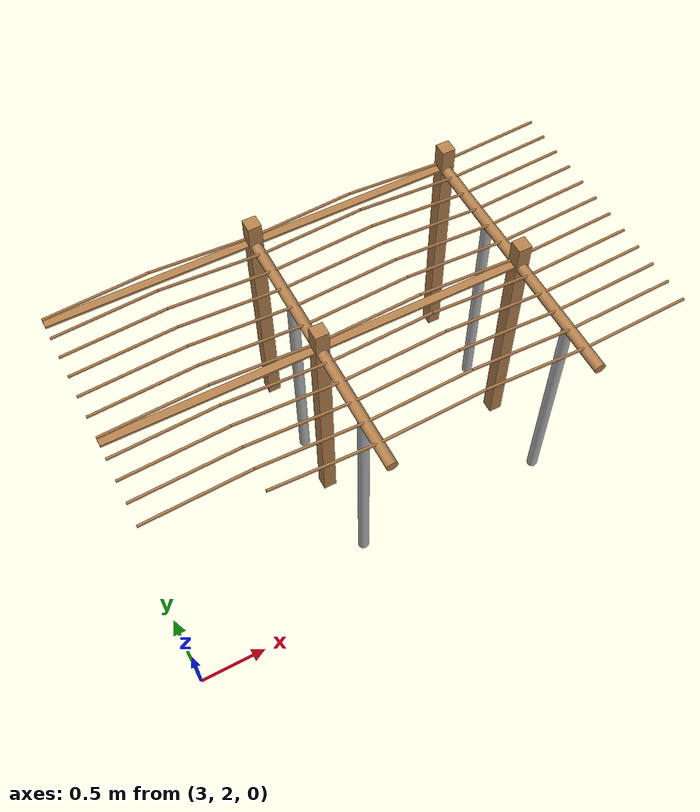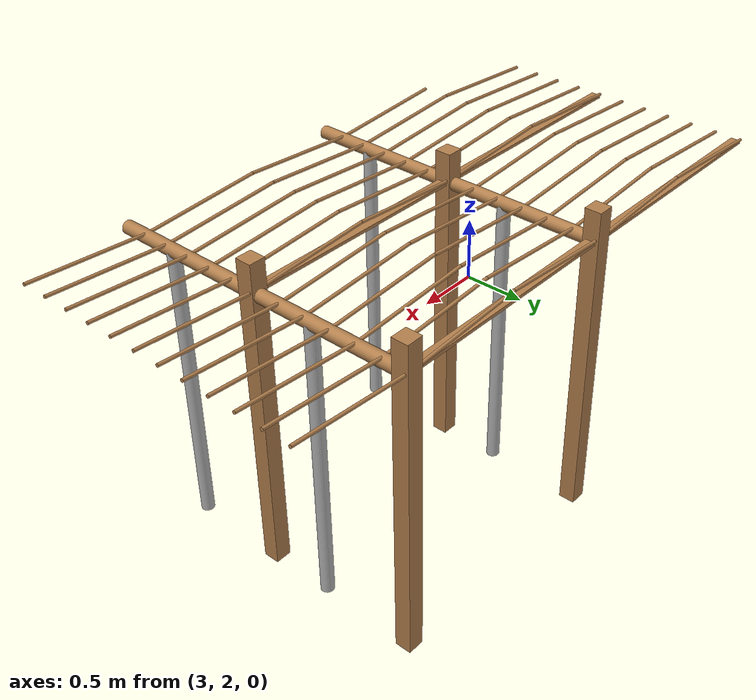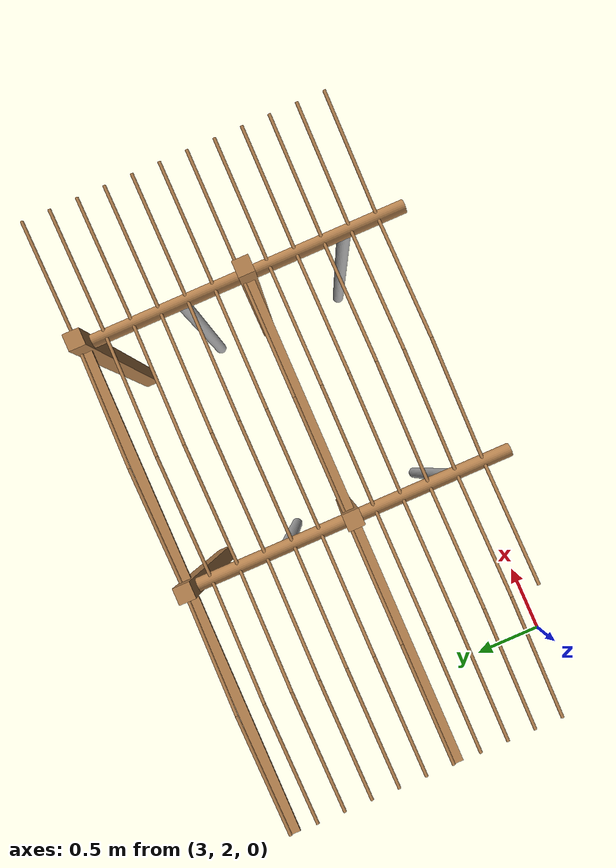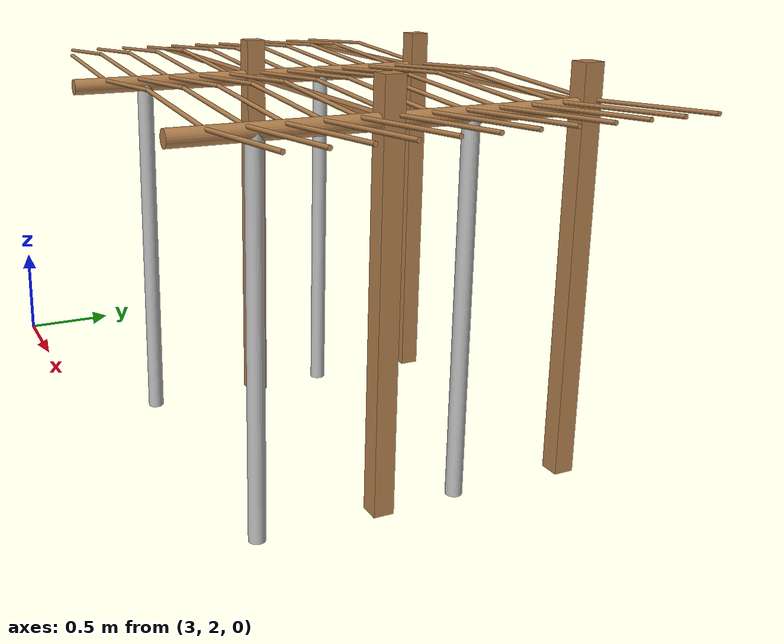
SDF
<sdf version="1.4">
 <model name="pergola">
  <include><name>post_36</name><pose>4.5 3.0 0 0 0 0</pose><uri>model://post</uri></include>
  <include><name>post_37</name><pose>4.5 4.0 0 0 0 0</pose><uri>model://post</uri></include>
  <include><name>post_47</name><pose>6.0 3.0 0 0 0 0</pose><uri>model://post</uri></include>
  <include><name>post_48</name><pose>6.0 4.0 0 0 0 0</pose><uri>model://post</uri></include>
  <link name="beam_25">
   <pose>3.75 3.0 1.81 0 0 0</pose>
   <collision name="collision"><geometry><box><size>1.5 0.06 0.02</size></box></geometry></collision>
   <visual name="visual">
    <geometry><box><size>1.5 0.06 0.02</size></box></geometry>
    <material><script><name>Gazebo/Wood</name></script></material>
   </visual>
   <inertial>
    <mass>5</mass>
    <inertia>
     <ixx>0.0016666666666666668</ixx>
     <ixy>0.0</ixy>
     <ixz>0.0</ixz>
     <iyy>0.9390000000000001</iyy>
     <iyz>0.0</iyz>
     <izz>0.9376666666666665</izz>
    </inertia>
   </inertial>
  </link>
  <link name="beam_26">
   <pose>3.75 4.0 1.81 0 0 0</pose>
   <collision name="collision"><geometry><box><size>1.5 0.06 0.02</size></box></geometry></collision>
   <visual name="visual">
    <geometry><box><size>1.5 0.06 0.02</size></box></geometry>
    <material><script><name>Gazebo/Wood</name></script></material>
   </visual>
   <inertial>
    <mass>5</mass>
    <inertia>
     <ixx>0.0016666666666666668</ixx>
     <ixy>0.0</ixy>
     <ixz>0.0</ixz>
     <iyy>0.9390000000000001</iyy>
     <iyz>0.0</iyz>
     <izz>0.9376666666666665</izz>
    </inertia>
   </inertial>
  </link>
  <link name="beam_36">
   <pose>5.25 3.0 1.81 0 0 0</pose>
   <collision name="collision"><geometry><box><size>1.5 0.06 0.02</size></box></geometry></collision>
   <visual name="visual">
    <geometry><box><size>1.5 0.06 0.02</size></box></geometry>
    <material><script><name>Gazebo/Wood</name></script></material>
   </visual>
   <inertial>
    <mass>5</mass>
    <inertia>
     <ixx>0.0016666666666666668</ixx>
     <ixy>0.0</ixy>
     <ixz>0.0</ixz>
     <iyy>0.9390000000000001</iyy>
     <iyz>0.0</iyz>
     <izz>0.9376666666666665</izz>
    </inertia>
   </inertial>
  </link>
  <link name="beam_37">
   <pose>5.25 4.0 1.81 0 0 0</pose>
   <collision name="collision"><geometry><box><size>1.5 0.06 0.02</size></box></geometry></collision>
   <visual name="visual">
    <geometry><box><size>1.5 0.06 0.02</size></box></geometry>
    <material><script><name>Gazebo/Wood</name></script></material>
   </visual>
   <inertial>
    <mass>5</mass>
    <inertia>
     <ixx>0.0016666666666666668</ixx>
     <ixy>0.0</ixy>
     <ixz>0.0</ixz>
     <iyy>0.9390000000000001</iyy>
     <iyz>0.0</iyz>
     <izz>0.9376666666666665</izz>
    </inertia>
   </inertial>
  </link>
  <include><name>tree_32</name><pose>4.5 2.4 0 0 0 0</pose><uri>model://tree_trunk</uri></include>
  <include><name>tree_33</name><pose>4.5 3.4 0 0 0 0</pose><uri>model://tree_trunk</uri></include>
  <include><name>tree_42</name><pose>6.0 2.4 0 0 0 0</pose><uri>model://tree_trunk</uri></include>
  <include><name>tree_43</name><pose>6.0 3.4 0 0 0 0</pose><uri>model://tree_trunk</uri></include>
  <link name="baseBranch_32">
   <pose>4.5 2.5 1.8 1.5707963267948966 0 0</pose>
   <collision name="collision">
    <geometry><cylinder><radius>0.04</radius><length>0.94</length></cylinder></geometry>
   </collision>
   <visual name="visual">
    <geometry><cylinder><radius>0.04</radius><length>0.94</length></cylinder></geometry>
    <material><script><name>Gazebo/WoodFloor</name></script></material>
   </visual>
   <inertial>
    <mass>10</mass>
    <inertia>
     <ixx>0.7403333333333334</ixx>
     <ixy>0.0</ixy>
     <ixz>0.0</ixz>
     <iyy>0.7403333333333334</iyy>
     <iyz>0.0</iyz>
     <izz>0.008</izz>
    </inertia>
   </inertial>
  </link>
  <link name="baseBranch_33">
   <pose>4.5 3.5 1.8 1.5707963267948966 0 0</pose>
   <collision name="collision">
    <geometry><cylinder><radius>0.04</radius><length>0.94</length></cylinder></geometry>
   </collision>
   <visual name="visual">
    <geometry><cylinder><radius>0.04</radius><length>0.94</length></cylinder></geometry>
    <material><script><name>Gazebo/WoodFloor</name></script></material>
   </visual>
   <inertial>
    <mass>10</mass>
    <inertia>
     <ixx>0.7403333333333334</ixx>
     <ixy>0.0</ixy>
     <ixz>0.0</ixz>
     <iyy>0.7403333333333334</iyy>
     <iyz>0.0</iyz>
     <izz>0.008</izz>
    </inertia>
   </inertial>
  </link>
  <link name="baseBranch_42">
   <pose>6.0 2.5 1.8 1.5707963267948966 0 0</pose>
   <collision name="collision">
    <geometry><cylinder><radius>0.04</radius><length>0.94</length></cylinder></geometry>
   </collision>
   <visual name="visual">
    <geometry><cylinder><radius>0.04</radius><length>0.94</length></cylinder></geometry>
    <material><script><name>Gazebo/WoodFloor</name></script></material>
   </visual>
   <inertial>
    <mass>10</mass>
    <inertia>
     <ixx>0.7403333333333334</ixx>
     <ixy>0.0</ixy>
     <ixz>0.0</ixz>
     <iyy>0.7403333333333334</iyy>
     <iyz>0.0</iyz>
     <izz>0.008</izz>
    </inertia>
   </inertial>
  </link>
  <link name="baseBranch_43">
   <pose>6.0 3.5 1.8 1.5707963267948966 0 0</pose>
   <collision name="collision">
    <geometry><cylinder><radius>0.04</radius><length>0.94</length></cylinder></geometry>
   </collision>
   <visual name="visual">
    <geometry><cylinder><radius>0.04</radius><length>0.94</length></cylinder></geometry>
    <material><script><name>Gazebo/WoodFloor</name></script></material>
   </visual>
   <inertial>
    <mass>10</mass>
    <inertia>
     <ixx>0.7403333333333334</ixx>
     <ixy>0.0</ixy>
     <ixz>0.0</ixz>
     <iyy>0.7403333333333334</iyy>
     <iyz>0.0</iyz>
     <izz>0.008</izz>
    </inertia>
   </inertial>
  </link>
  <link name="vine_267">
   <pose>4.125 2.1966666666666663 1.85 0 -1.5042281630190728 0</pose>
   <collision name="collision">
    <geometry><cylinder><radius>0.01</radius><length>0.7516648189186453</length></cylinder></geometry>
   </collision>
   <visual name="visual">
    <geometry><cylinder><radius>0.01</radius><length>0.7516648189186453</length></cylinder></geometry>
    <material><script><name>Gazebo/WoodFloor</name></script></material>
   </visual>
   <inertial>
    <mass>5</mass>
    <inertia>
     <ixx>0.23554166666666657</ixx>
     <ixy>0.0</ixy>
     <ixz>0.0</ixz>
     <iyy>0.23554166666666657</iyy>
     <iyz>0.0</iyz>
     <izz>0.00025</izz>
    </inertia>
   </inertial>
  </link>
  <link name="vine_268">
   <pose>3.375 2.363333333333333 1.85 0 1.5042281630190728 0</pose>
   <collision name="collision">
    <geometry><cylinder><radius>0.01</radius><length>0.7516648189186453</length></cylinder></geometry>
   </collision>
   <visual name="visual">
    <geometry><cylinder><radius>0.01</radius><length>0.7516648189186453</length></cylinder></geometry>
    <material><script><name>Gazebo/WoodFloor</name></script></material>
   </visual>
   <inertial>
    <mass>5</mass>
    <inertia>
     <ixx>0.23554166666666657</ixx>
     <ixy>0.0</ixy>
     <ixz>0.0</ixz>
     <iyy>0.23554166666666657</iyy>
     <iyz>0.0</iyz>
     <izz>0.00025</izz>
    </inertia>
   </inertial>
  </link>
  <link name="vine_269">
   <pose>4.125 2.363333333333333 1.85 0 -1.5042281630190728 0</pose>
   <collision name="collision">
    <geometry><cylinder><radius>0.01</radius><length>0.7516648189186453</length></cylinder></geometry>
   </collision>
   <visual name="visual">
    <geometry><cylinder><radius>0.01</radius><length>0.7516648189186453</length></cylinder></geometry>
    <material><script><name>Gazebo/WoodFloor</name></script></material>
   </visual>
   <inertial>
    <mass>5</mass>
    <inertia>
     <ixx>0.23554166666666657</ixx>
     <ixy>0.0</ixy>
     <ixz>0.0</ixz>
     <iyy>0.23554166666666657</iyy>
     <iyz>0.0</iyz>
     <izz>0.00025</izz>
    </inertia>
   </inertial>
  </link>
  <link name="vine_270">
   <pose>3.375 2.53 1.85 0 1.5042281630190728 0</pose>
   <collision name="collision">
    <geometry><cylinder><radius>0.01</radius><length>0.7516648189186453</length></cylinder></geometry>
   </collision>
   <visual name="visual">
    <geometry><cylinder><radius>0.01</radius><length>0.7516648189186453</length></cylinder></geometry>
    <material><script><name>Gazebo/WoodFloor</name></script></material>
   </visual>
   <inertial>
    <mass>5</mass>
    <inertia>
     <ixx>0.23554166666666657</ixx>
     <ixy>0.0</ixy>
     <ixz>0.0</ixz>
     <iyy>0.23554166666666657</iyy>
     <iyz>0.0</iyz>
     <izz>0.00025</izz>
    </inertia>
   </inertial>
  </link>
  <link name="vine_271">
   <pose>4.125 2.53 1.85 0 -1.5042281630190728 0</pose>
   <collision name="collision">
    <geometry><cylinder><radius>0.01</radius><length>0.7516648189186453</length></cylinder></geometry>
   </collision>
   <visual name="visual">
    <geometry><cylinder><radius>0.01</radius><length>0.7516648189186453</length></cylinder></geometry>
    <material><script><name>Gazebo/WoodFloor</name></script></material>
   </visual>
   <inertial>
    <mass>5</mass>
    <inertia>
     <ixx>0.23554166666666657</ixx>
     <ixy>0.0</ixy>
     <ixz>0.0</ixz>
     <iyy>0.23554166666666657</iyy>
     <iyz>0.0</iyz>
     <izz>0.00025</izz>
    </inertia>
   </inertial>
  </link>
  <link name="vine_272">
   <pose>3.375 2.6966666666666663 1.85 0 1.5042281630190728 0</pose>
   <collision name="collision">
    <geometry><cylinder><radius>0.01</radius><length>0.7516648189186453</length></cylinder></geometry>
   </collision>
   <visual name="visual">
    <geometry><cylinder><radius>0.01</radius><length>0.7516648189186453</length></cylinder></geometry>
    <material><script><name>Gazebo/WoodFloor</name></script></material>
   </visual>
   <inertial>
    <mass>5</mass>
    <inertia>
     <ixx>0.23554166666666657</ixx>
     <ixy>0.0</ixy>
     <ixz>0.0</ixz>
     <iyy>0.23554166666666657</iyy>
     <iyz>0.0</iyz>
     <izz>0.00025</izz>
    </inertia>
   </inertial>
  </link>
  <link name="vine_273">
   <pose>4.125 2.6966666666666663 1.85 0 -1.5042281630190728 0</pose>
   <collision name="collision">
    <geometry><cylinder><radius>0.01</radius><length>0.7516648189186453</length></cylinder></geometry>
   </collision>
   <visual name="visual">
    <geometry><cylinder><radius>0.01</radius><length>0.7516648189186453</length></cylinder></geometry>
    <material><script><name>Gazebo/WoodFloor</name></script></material>
   </visual>
   <inertial>
    <mass>5</mass>
    <inertia>
     <ixx>0.23554166666666657</ixx>
     <ixy>0.0</ixy>
     <ixz>0.0</ixz>
     <iyy>0.23554166666666657</iyy>
     <iyz>0.0</iyz>
     <izz>0.00025</izz>
    </inertia>
   </inertial>
  </link>
  <link name="vine_274">
   <pose>3.375 2.863333333333333 1.85 0 1.5042281630190728 0</pose>
   <collision name="collision">
    <geometry><cylinder><radius>0.01</radius><length>0.7516648189186453</length></cylinder></geometry>
   </collision>
   <visual name="visual">
    <geometry><cylinder><radius>0.01</radius><length>0.7516648189186453</length></cylinder></geometry>
    <material><script><name>Gazebo/WoodFloor</name></script></material>
   </visual>
   <inertial>
    <mass>5</mass>
    <inertia>
     <ixx>0.23554166666666657</ixx>
     <ixy>0.0</ixy>
     <ixz>0.0</ixz>
     <iyy>0.23554166666666657</iyy>
     <iyz>0.0</iyz>
     <izz>0.00025</izz>
    </inertia>
   </inertial>
  </link>
  <link name="vine_275">
   <pose>4.125 2.863333333333333 1.85 0 -1.5042281630190728 0</pose>
   <collision name="collision">
    <geometry><cylinder><radius>0.01</radius><length>0.7516648189186453</length></cylinder></geometry>
   </collision>
   <visual name="visual">
    <geometry><cylinder><radius>0.01</radius><length>0.7516648189186453</length></cylinder></geometry>
    <material><script><name>Gazebo/WoodFloor</name></script></material>
   </visual>
   <inertial>
    <mass>5</mass>
    <inertia>
     <ixx>0.23554166666666657</ixx>
     <ixy>0.0</ixy>
     <ixz>0.0</ixz>
     <iyy>0.23554166666666657</iyy>
     <iyz>0.0</iyz>
     <izz>0.00025</izz>
    </inertia>
   </inertial>
  </link>
  <link name="vine_276">
   <pose>3.375 3.03 1.85 0 1.5042281630190728 0</pose>
   <collision name="collision">
    <geometry><cylinder><radius>0.01</radius><length>0.7516648189186453</length></cylinder></geometry>
   </collision>
   <visual name="visual">
    <geometry><cylinder><radius>0.01</radius><length>0.7516648189186453</length></cylinder></geometry>
    <material><script><name>Gazebo/WoodFloor</name></script></material>
   </visual>
   <inertial>
    <mass>5</mass>
    <inertia>
     <ixx>0.23554166666666657</ixx>
     <ixy>0.0</ixy>
     <ixz>0.0</ixz>
     <iyy>0.23554166666666657</iyy>
     <iyz>0.0</iyz>
     <izz>0.00025</izz>
    </inertia>
   </inertial>
  </link>
  <link name="vine_277">
   <pose>4.125 3.03 1.85 0 -1.5042281630190728 0</pose>
   <collision name="collision">
    <geometry><cylinder><radius>0.01</radius><length>0.7516648189186453</length></cylinder></geometry>
   </collision>
   <visual name="visual">
    <geometry><cylinder><radius>0.01</radius><length>0.7516648189186453</length></cylinder></geometry>
    <material><script><name>Gazebo/WoodFloor</name></script></material>
   </visual>
   <inertial>
    <mass>5</mass>
    <inertia>
     <ixx>0.23554166666666657</ixx>
     <ixy>0.0</ixy>
     <ixz>0.0</ixz>
     <iyy>0.23554166666666657</iyy>
     <iyz>0.0</iyz>
     <izz>0.00025</izz>
    </inertia>
   </inertial>
  </link>
  <link name="vine_278">
   <pose>3.375 3.1966666666666663 1.85 0 1.5042281630190728 0</pose>
   <collision name="collision">
    <geometry><cylinder><radius>0.01</radius><length>0.7516648189186453</length></cylinder></geometry>
   </collision>
   <visual name="visual">
    <geometry><cylinder><radius>0.01</radius><length>0.7516648189186453</length></cylinder></geometry>
    <material><script><name>Gazebo/WoodFloor</name></script></material>
   </visual>
   <inertial>
    <mass>5</mass>
    <inertia>
     <ixx>0.23554166666666657</ixx>
     <ixy>0.0</ixy>
     <ixz>0.0</ixz>
     <iyy>0.23554166666666657</iyy>
     <iyz>0.0</iyz>
     <izz>0.00025</izz>
    </inertia>
   </inertial>
  </link>
  <link name="vine_279">
   <pose>4.125 3.1966666666666663 1.85 0 -1.5042281630190728 0</pose>
   <collision name="collision">
    <geometry><cylinder><radius>0.01</radius><length>0.7516648189186453</length></cylinder></geometry>
   </collision>
   <visual name="visual">
    <geometry><cylinder><radius>0.01</radius><length>0.7516648189186453</length></cylinder></geometry>
    <material><script><name>Gazebo/WoodFloor</name></script></material>
   </visual>
   <inertial>
    <mass>5</mass>
    <inertia>
     <ixx>0.23554166666666657</ixx>
     <ixy>0.0</ixy>
     <ixz>0.0</ixz>
     <iyy>0.23554166666666657</iyy>
     <iyz>0.0</iyz>
     <izz>0.00025</izz>
    </inertia>
   </inertial>
  </link>
  <link name="vine_280">
   <pose>3.375 3.363333333333333 1.85 0 1.5042281630190728 0</pose>
   <collision name="collision">
    <geometry><cylinder><radius>0.01</radius><length>0.7516648189186453</length></cylinder></geometry>
   </collision>
   <visual name="visual">
    <geometry><cylinder><radius>0.01</radius><length>0.7516648189186453</length></cylinder></geometry>
    <material><script><name>Gazebo/WoodFloor</name></script></material>
   </visual>
   <inertial>
    <mass>5</mass>
    <inertia>
     <ixx>0.23554166666666657</ixx>
     <ixy>0.0</ixy>
     <ixz>0.0</ixz>
     <iyy>0.23554166666666657</iyy>
     <iyz>0.0</iyz>
     <izz>0.00025</izz>
    </inertia>
   </inertial>
  </link>
  <link name="vine_281">
   <pose>4.125 3.363333333333333 1.85 0 -1.5042281630190728 0</pose>
   <collision name="collision">
    <geometry><cylinder><radius>0.01</radius><length>0.7516648189186453</length></cylinder></geometry>
   </collision>
   <visual name="visual">
    <geometry><cylinder><radius>0.01</radius><length>0.7516648189186453</length></cylinder></geometry>
    <material><script><name>Gazebo/WoodFloor</name></script></material>
   </visual>
   <inertial>
    <mass>5</mass>
    <inertia>
     <ixx>0.23554166666666657</ixx>
     <ixy>0.0</ixy>
     <ixz>0.0</ixz>
     <iyy>0.23554166666666657</iyy>
     <iyz>0.0</iyz>
     <izz>0.00025</izz>
    </inertia>
   </inertial>
  </link>
  <link name="vine_282">
   <pose>3.375 3.53 1.85 0 1.5042281630190728 0</pose>
   <collision name="collision">
    <geometry><cylinder><radius>0.01</radius><length>0.7516648189186453</length></cylinder></geometry>
   </collision>
   <visual name="visual">
    <geometry><cylinder><radius>0.01</radius><length>0.7516648189186453</length></cylinder></geometry>
    <material><script><name>Gazebo/WoodFloor</name></script></material>
   </visual>
   <inertial>
    <mass>5</mass>
    <inertia>
     <ixx>0.23554166666666657</ixx>
     <ixy>0.0</ixy>
     <ixz>0.0</ixz>
     <iyy>0.23554166666666657</iyy>
     <iyz>0.0</iyz>
     <izz>0.00025</izz>
    </inertia>
   </inertial>
  </link>
  <link name="vine_283">
   <pose>4.125 3.53 1.85 0 -1.5042281630190728 0</pose>
   <collision name="collision">
    <geometry><cylinder><radius>0.01</radius><length>0.7516648189186453</length></cylinder></geometry>
   </collision>
   <visual name="visual">
    <geometry><cylinder><radius>0.01</radius><length>0.7516648189186453</length></cylinder></geometry>
    <material><script><name>Gazebo/WoodFloor</name></script></material>
   </visual>
   <inertial>
    <mass>5</mass>
    <inertia>
     <ixx>0.23554166666666657</ixx>
     <ixy>0.0</ixy>
     <ixz>0.0</ixz>
     <iyy>0.23554166666666657</iyy>
     <iyz>0.0</iyz>
     <izz>0.00025</izz>
    </inertia>
   </inertial>
  </link>
  <link name="vine_284">
   <pose>3.375 3.6966666666666663 1.85 0 1.5042281630190728 0</pose>
   <collision name="collision">
    <geometry><cylinder><radius>0.01</radius><length>0.7516648189186453</length></cylinder></geometry>
   </collision>
   <visual name="visual">
    <geometry><cylinder><radius>0.01</radius><length>0.7516648189186453</length></cylinder></geometry>
    <material><script><name>Gazebo/WoodFloor</name></script></material>
   </visual>
   <inertial>
    <mass>5</mass>
    <inertia>
     <ixx>0.23554166666666657</ixx>
     <ixy>0.0</ixy>
     <ixz>0.0</ixz>
     <iyy>0.23554166666666657</iyy>
     <iyz>0.0</iyz>
     <izz>0.00025</izz>
    </inertia>
   </inertial>
  </link>
  <link name="vine_285">
   <pose>4.125 3.6966666666666663 1.85 0 -1.5042281630190728 0</pose>
   <collision name="collision">
    <geometry><cylinder><radius>0.01</radius><length>0.7516648189186453</length></cylinder></geometry>
   </collision>
   <visual name="visual">
    <geometry><cylinder><radius>0.01</radius><length>0.7516648189186453</length></cylinder></geometry>
    <material><script><name>Gazebo/WoodFloor</name></script></material>
   </visual>
   <inertial>
    <mass>5</mass>
    <inertia>
     <ixx>0.23554166666666657</ixx>
     <ixy>0.0</ixy>
     <ixz>0.0</ixz>
     <iyy>0.23554166666666657</iyy>
     <iyz>0.0</iyz>
     <izz>0.00025</izz>
    </inertia>
   </inertial>
  </link>
  <link name="vine_286">
   <pose>3.375 3.863333333333333 1.85 0 1.5042281630190728 0</pose>
   <collision name="collision">
    <geometry><cylinder><radius>0.01</radius><length>0.7516648189186453</length></cylinder></geometry>
   </collision>
   <visual name="visual">
    <geometry><cylinder><radius>0.01</radius><length>0.7516648189186453</length></cylinder></geometry>
    <material><script><name>Gazebo/WoodFloor</name></script></material>
   </visual>
   <inertial>
    <mass>5</mass>
    <inertia>
     <ixx>0.23554166666666657</ixx>
     <ixy>0.0</ixy>
     <ixz>0.0</ixz>
     <iyy>0.23554166666666657</iyy>
     <iyz>0.0</iyz>
     <izz>0.00025</izz>
    </inertia>
   </inertial>
  </link>
  <link name="vine_287">
   <pose>4.125 3.863333333333333 1.85 0 -1.5042281630190728 0</pose>
   <collision name="collision">
    <geometry><cylinder><radius>0.01</radius><length>0.7516648189186453</length></cylinder></geometry>
   </collision>
   <visual name="visual">
    <geometry><cylinder><radius>0.01</radius><length>0.7516648189186453</length></cylinder></geometry>
    <material><script><name>Gazebo/WoodFloor</name></script></material>
   </visual>
   <inertial>
    <mass>5</mass>
    <inertia>
     <ixx>0.23554166666666657</ixx>
     <ixy>0.0</ixy>
     <ixz>0.0</ixz>
     <iyy>0.23554166666666657</iyy>
     <iyz>0.0</iyz>
     <izz>0.00025</izz>
    </inertia>
   </inertial>
  </link>
  <link name="vine_288">
   <pose>3.375 4.03 1.85 0 1.5042281630190728 0</pose>
   <collision name="collision">
    <geometry><cylinder><radius>0.01</radius><length>0.7516648189186453</length></cylinder></geometry>
   </collision>
   <visual name="visual">
    <geometry><cylinder><radius>0.01</radius><length>0.7516648189186453</length></cylinder></geometry>
    <material><script><name>Gazebo/WoodFloor</name></script></material>
   </visual>
   <inertial>
    <mass>5</mass>
    <inertia>
     <ixx>0.23554166666666657</ixx>
     <ixy>0.0</ixy>
     <ixz>0.0</ixz>
     <iyy>0.23554166666666657</iyy>
     <iyz>0.0</iyz>
     <izz>0.00025</izz>
    </inertia>
   </inertial>
  </link>
  <link name="vine_289">
   <pose>4.125 4.03 1.85 0 -1.5042281630190728 0</pose>
   <collision name="collision">
    <geometry><cylinder><radius>0.01</radius><length>0.7516648189186453</length></cylinder></geometry>
   </collision>
   <visual name="visual">
    <geometry><cylinder><radius>0.01</radius><length>0.7516648189186453</length></cylinder></geometry>
    <material><script><name>Gazebo/WoodFloor</name></script></material>
   </visual>
   <inertial>
    <mass>5</mass>
    <inertia>
     <ixx>0.23554166666666657</ixx>
     <ixy>0.0</ixy>
     <ixz>0.0</ixz>
     <iyy>0.23554166666666657</iyy>
     <iyz>0.0</iyz>
     <izz>0.00025</izz>
    </inertia>
   </inertial>
  </link>
  <link name="vine_386">
   <pose>4.875 2.1966666666666663 1.85 0 1.5042281630190728 0</pose>
   <collision name="collision">
    <geometry><cylinder><radius>0.01</radius><length>0.7516648189186453</length></cylinder></geometry>
   </collision>
   <visual name="visual">
    <geometry><cylinder><radius>0.01</radius><length>0.7516648189186453</length></cylinder></geometry>
    <material><script><name>Gazebo/WoodFloor</name></script></material>
   </visual>
   <inertial>
    <mass>5</mass>
    <inertia>
     <ixx>0.23554166666666657</ixx>
     <ixy>0.0</ixy>
     <ixz>0.0</ixz>
     <iyy>0.23554166666666657</iyy>
     <iyz>0.0</iyz>
     <izz>0.00025</izz>
    </inertia>
   </inertial>
  </link>
  <link name="vine_387">
   <pose>5.625 2.1966666666666663 1.85 0 -1.5042281630190728 0</pose>
   <collision name="collision">
    <geometry><cylinder><radius>0.01</radius><length>0.7516648189186453</length></cylinder></geometry>
   </collision>
   <visual name="visual">
    <geometry><cylinder><radius>0.01</radius><length>0.7516648189186453</length></cylinder></geometry>
    <material><script><name>Gazebo/WoodFloor</name></script></material>
   </visual>
   <inertial>
    <mass>5</mass>
    <inertia>
     <ixx>0.23554166666666657</ixx>
     <ixy>0.0</ixy>
     <ixz>0.0</ixz>
     <iyy>0.23554166666666657</iyy>
     <iyz>0.0</iyz>
     <izz>0.00025</izz>
    </inertia>
   </inertial>
  </link>
  <link name="vine_388">
   <pose>4.875 2.363333333333333 1.85 0 1.5042281630190728 0</pose>
   <collision name="collision">
    <geometry><cylinder><radius>0.01</radius><length>0.7516648189186453</length></cylinder></geometry>
   </collision>
   <visual name="visual">
    <geometry><cylinder><radius>0.01</radius><length>0.7516648189186453</length></cylinder></geometry>
    <material><script><name>Gazebo/WoodFloor</name></script></material>
   </visual>
   <inertial>
    <mass>5</mass>
    <inertia>
     <ixx>0.23554166666666657</ixx>
     <ixy>0.0</ixy>
     <ixz>0.0</ixz>
     <iyy>0.23554166666666657</iyy>
     <iyz>0.0</iyz>
     <izz>0.00025</izz>
    </inertia>
   </inertial>
  </link>
  <link name="vine_389">
   <pose>5.625 2.363333333333333 1.85 0 -1.5042281630190728 0</pose>
   <collision name="collision">
    <geometry><cylinder><radius>0.01</radius><length>0.7516648189186453</length></cylinder></geometry>
   </collision>
   <visual name="visual">
    <geometry><cylinder><radius>0.01</radius><length>0.7516648189186453</length></cylinder></geometry>
    <material><script><name>Gazebo/WoodFloor</name></script></material>
   </visual>
   <inertial>
    <mass>5</mass>
    <inertia>
     <ixx>0.23554166666666657</ixx>
     <ixy>0.0</ixy>
     <ixz>0.0</ixz>
     <iyy>0.23554166666666657</iyy>
     <iyz>0.0</iyz>
     <izz>0.00025</izz>
    </inertia>
   </inertial>
  </link>
  <link name="vine_390">
   <pose>4.875 2.53 1.85 0 1.5042281630190728 0</pose>
   <collision name="collision">
    <geometry><cylinder><radius>0.01</radius><length>0.7516648189186453</length></cylinder></geometry>
   </collision>
   <visual name="visual">
    <geometry><cylinder><radius>0.01</radius><length>0.7516648189186453</length></cylinder></geometry>
    <material><script><name>Gazebo/WoodFloor</name></script></material>
   </visual>
   <inertial>
    <mass>5</mass>
    <inertia>
     <ixx>0.23554166666666657</ixx>
     <ixy>0.0</ixy>
     <ixz>0.0</ixz>
     <iyy>0.23554166666666657</iyy>
     <iyz>0.0</iyz>
     <izz>0.00025</izz>
    </inertia>
   </inertial>
  </link>
  <link name="vine_391">
   <pose>5.625 2.53 1.85 0 -1.5042281630190728 0</pose>
   <collision name="collision">
    <geometry><cylinder><radius>0.01</radius><length>0.7516648189186453</length></cylinder></geometry>
   </collision>
   <visual name="visual">
    <geometry><cylinder><radius>0.01</radius><length>0.7516648189186453</length></cylinder></geometry>
    <material><script><name>Gazebo/WoodFloor</name></script></material>
   </visual>
   <inertial>
    <mass>5</mass>
    <inertia>
     <ixx>0.23554166666666657</ixx>
     <ixy>0.0</ixy>
     <ixz>0.0</ixz>
     <iyy>0.23554166666666657</iyy>
     <iyz>0.0</iyz>
     <izz>0.00025</izz>
    </inertia>
   </inertial>
  </link>
  <link name="vine_392">
   <pose>4.875 2.6966666666666663 1.85 0 1.5042281630190728 0</pose>
   <collision name="collision">
    <geometry><cylinder><radius>0.01</radius><length>0.7516648189186453</length></cylinder></geometry>
   </collision>
   <visual name="visual">
    <geometry><cylinder><radius>0.01</radius><length>0.7516648189186453</length></cylinder></geometry>
    <material><script><name>Gazebo/WoodFloor</name></script></material>
   </visual>
   <inertial>
    <mass>5</mass>
    <inertia>
     <ixx>0.23554166666666657</ixx>
     <ixy>0.0</ixy>
     <ixz>0.0</ixz>
     <iyy>0.23554166666666657</iyy>
     <iyz>0.0</iyz>
     <izz>0.00025</izz>
    </inertia>
   </inertial>
  </link>
  <link name="vine_393">
   <pose>5.625 2.6966666666666663 1.85 0 -1.5042281630190728 0</pose>
   <collision name="collision">
    <geometry><cylinder><radius>0.01</radius><length>0.7516648189186453</length></cylinder></geometry>
   </collision>
   <visual name="visual">
    <geometry><cylinder><radius>0.01</radius><length>0.7516648189186453</length></cylinder></geometry>
    <material><script><name>Gazebo/WoodFloor</name></script></material>
   </visual>
   <inertial>
    <mass>5</mass>
    <inertia>
     <ixx>0.23554166666666657</ixx>
     <ixy>0.0</ixy>
     <ixz>0.0</ixz>
     <iyy>0.23554166666666657</iyy>
     <iyz>0.0</iyz>
     <izz>0.00025</izz>
    </inertia>
   </inertial>
  </link>
  <link name="vine_394">
   <pose>4.875 2.863333333333333 1.85 0 1.5042281630190728 0</pose>
   <collision name="collision">
    <geometry><cylinder><radius>0.01</radius><length>0.7516648189186453</length></cylinder></geometry>
   </collision>
   <visual name="visual">
    <geometry><cylinder><radius>0.01</radius><length>0.7516648189186453</length></cylinder></geometry>
    <material><script><name>Gazebo/WoodFloor</name></script></material>
   </visual>
   <inertial>
    <mass>5</mass>
    <inertia>
     <ixx>0.23554166666666657</ixx>
     <ixy>0.0</ixy>
     <ixz>0.0</ixz>
     <iyy>0.23554166666666657</iyy>
     <iyz>0.0</iyz>
     <izz>0.00025</izz>
    </inertia>
   </inertial>
  </link>
  <link name="vine_395">
   <pose>5.625 2.863333333333333 1.85 0 -1.5042281630190728 0</pose>
   <collision name="collision">
    <geometry><cylinder><radius>0.01</radius><length>0.7516648189186453</length></cylinder></geometry>
   </collision>
   <visual name="visual">
    <geometry><cylinder><radius>0.01</radius><length>0.7516648189186453</length></cylinder></geometry>
    <material><script><name>Gazebo/WoodFloor</name></script></material>
   </visual>
   <inertial>
    <mass>5</mass>
    <inertia>
     <ixx>0.23554166666666657</ixx>
     <ixy>0.0</ixy>
     <ixz>0.0</ixz>
     <iyy>0.23554166666666657</iyy>
     <iyz>0.0</iyz>
     <izz>0.00025</izz>
    </inertia>
   </inertial>
  </link>
  <link name="vine_396">
   <pose>4.875 3.03 1.85 0 1.5042281630190728 0</pose>
   <collision name="collision">
    <geometry><cylinder><radius>0.01</radius><length>0.7516648189186453</length></cylinder></geometry>
   </collision>
   <visual name="visual">
    <geometry><cylinder><radius>0.01</radius><length>0.7516648189186453</length></cylinder></geometry>
    <material><script><name>Gazebo/WoodFloor</name></script></material>
   </visual>
   <inertial>
    <mass>5</mass>
    <inertia>
     <ixx>0.23554166666666657</ixx>
     <ixy>0.0</ixy>
     <ixz>0.0</ixz>
     <iyy>0.23554166666666657</iyy>
     <iyz>0.0</iyz>
     <izz>0.00025</izz>
    </inertia>
   </inertial>
  </link>
  <link name="vine_397">
   <pose>5.625 3.03 1.85 0 -1.5042281630190728 0</pose>
   <collision name="collision">
    <geometry><cylinder><radius>0.01</radius><length>0.7516648189186453</length></cylinder></geometry>
   </collision>
   <visual name="visual">
    <geometry><cylinder><radius>0.01</radius><length>0.7516648189186453</length></cylinder></geometry>
    <material><script><name>Gazebo/WoodFloor</name></script></material>
   </visual>
   <inertial>
    <mass>5</mass>
    <inertia>
     <ixx>0.23554166666666657</ixx>
     <ixy>0.0</ixy>
     <ixz>0.0</ixz>
     <iyy>0.23554166666666657</iyy>
     <iyz>0.0</iyz>
     <izz>0.00025</izz>
    </inertia>
   </inertial>
  </link>
  <link name="vine_398">
   <pose>4.875 3.1966666666666663 1.85 0 1.5042281630190728 0</pose>
   <collision name="collision">
    <geometry><cylinder><radius>0.01</radius><length>0.7516648189186453</length></cylinder></geometry>
   </collision>
   <visual name="visual">
    <geometry><cylinder><radius>0.01</radius><length>0.7516648189186453</length></cylinder></geometry>
    <material><script><name>Gazebo/WoodFloor</name></script></material>
   </visual>
   <inertial>
    <mass>5</mass>
    <inertia>
     <ixx>0.23554166666666657</ixx>
     <ixy>0.0</ixy>
     <ixz>0.0</ixz>
     <iyy>0.23554166666666657</iyy>
     <iyz>0.0</iyz>
     <izz>0.00025</izz>
    </inertia>
   </inertial>
  </link>
  <link name="vine_399">
   <pose>5.625 3.1966666666666663 1.85 0 -1.5042281630190728 0</pose>
   <collision name="collision">
    <geometry><cylinder><radius>0.01</radius><length>0.7516648189186453</length></cylinder></geometry>
   </collision>
   <visual name="visual">
    <geometry><cylinder><radius>0.01</radius><length>0.7516648189186453</length></cylinder></geometry>
    <material><script><name>Gazebo/WoodFloor</name></script></material>
   </visual>
   <inertial>
    <mass>5</mass>
    <inertia>
     <ixx>0.23554166666666657</ixx>
     <ixy>0.0</ixy>
     <ixz>0.0</ixz>
     <iyy>0.23554166666666657</iyy>
     <iyz>0.0</iyz>
     <izz>0.00025</izz>
    </inertia>
   </inertial>
  </link>
  <link name="vine_400">
   <pose>4.875 3.363333333333333 1.85 0 1.5042281630190728 0</pose>
   <collision name="collision">
    <geometry><cylinder><radius>0.01</radius><length>0.7516648189186453</length></cylinder></geometry>
   </collision>
   <visual name="visual">
    <geometry><cylinder><radius>0.01</radius><length>0.7516648189186453</length></cylinder></geometry>
    <material><script><name>Gazebo/WoodFloor</name></script></material>
   </visual>
   <inertial>
    <mass>5</mass>
    <inertia>
     <ixx>0.23554166666666657</ixx>
     <ixy>0.0</ixy>
     <ixz>0.0</ixz>
     <iyy>0.23554166666666657</iyy>
     <iyz>0.0</iyz>
     <izz>0.00025</izz>
    </inertia>
   </inertial>
  </link>
  <link name="vine_401">
   <pose>5.625 3.363333333333333 1.85 0 -1.5042281630190728 0</pose>
   <collision name="collision">
    <geometry><cylinder><radius>0.01</radius><length>0.7516648189186453</length></cylinder></geometry>
   </collision>
   <visual name="visual">
    <geometry><cylinder><radius>0.01</radius><length>0.7516648189186453</length></cylinder></geometry>
    <material><script><name>Gazebo/WoodFloor</name></script></material>
   </visual>
   <inertial>
    <mass>5</mass>
    <inertia>
     <ixx>0.23554166666666657</ixx>
     <ixy>0.0</ixy>
     <ixz>0.0</ixz>
     <iyy>0.23554166666666657</iyy>
     <iyz>0.0</iyz>
     <izz>0.00025</izz>
    </inertia>
   </inertial>
  </link>
  <link name="vine_402">
   <pose>4.875 3.53 1.85 0 1.5042281630190728 0</pose>
   <collision name="collision">
    <geometry><cylinder><radius>0.01</radius><length>0.7516648189186453</length></cylinder></geometry>
   </collision>
   <visual name="visual">
    <geometry><cylinder><radius>0.01</radius><length>0.7516648189186453</length></cylinder></geometry>
    <material><script><name>Gazebo/WoodFloor</name></script></material>
   </visual>
   <inertial>
    <mass>5</mass>
    <inertia>
     <ixx>0.23554166666666657</ixx>
     <ixy>0.0</ixy>
     <ixz>0.0</ixz>
     <iyy>0.23554166666666657</iyy>
     <iyz>0.0</iyz>
     <izz>0.00025</izz>
    </inertia>
   </inertial>
  </link>
  <link name="vine_403">
   <pose>5.625 3.53 1.85 0 -1.5042281630190728 0</pose>
   <collision name="collision">
    <geometry><cylinder><radius>0.01</radius><length>0.7516648189186453</length></cylinder></geometry>
   </collision>
   <visual name="visual">
    <geometry><cylinder><radius>0.01</radius><length>0.7516648189186453</length></cylinder></geometry>
    <material><script><name>Gazebo/WoodFloor</name></script></material>
   </visual>
   <inertial>
    <mass>5</mass>
    <inertia>
     <ixx>0.23554166666666657</ixx>
     <ixy>0.0</ixy>
     <ixz>0.0</ixz>
     <iyy>0.23554166666666657</iyy>
     <iyz>0.0</iyz>
     <izz>0.00025</izz>
    </inertia>
   </inertial>
  </link>
  <link name="vine_404">
   <pose>4.875 3.6966666666666663 1.85 0 1.5042281630190728 0</pose>
   <collision name="collision">
    <geometry><cylinder><radius>0.01</radius><length>0.7516648189186453</length></cylinder></geometry>
   </collision>
   <visual name="visual">
    <geometry><cylinder><radius>0.01</radius><length>0.7516648189186453</length></cylinder></geometry>
    <material><script><name>Gazebo/WoodFloor</name></script></material>
   </visual>
   <inertial>
    <mass>5</mass>
    <inertia>
     <ixx>0.23554166666666657</ixx>
     <ixy>0.0</ixy>
     <ixz>0.0</ixz>
     <iyy>0.23554166666666657</iyy>
     <iyz>0.0</iyz>
     <izz>0.00025</izz>
    </inertia>
   </inertial>
  </link>
  <link name="vine_405">
   <pose>5.625 3.6966666666666663 1.85 0 -1.5042281630190728 0</pose>
   <collision name="collision">
    <geometry><cylinder><radius>0.01</radius><length>0.7516648189186453</length></cylinder></geometry>
   </collision>
   <visual name="visual">
    <geometry><cylinder><radius>0.01</radius><length>0.7516648189186453</length></cylinder></geometry>
    <material><script><name>Gazebo/WoodFloor</name></script></material>
   </visual>
   <inertial>
    <mass>5</mass>
    <inertia>
     <ixx>0.23554166666666657</ixx>
     <ixy>0.0</ixy>
     <ixz>0.0</ixz>
     <iyy>0.23554166666666657</iyy>
     <iyz>0.0</iyz>
     <izz>0.00025</izz>
    </inertia>
   </inertial>
  </link>
  <link name="vine_406">
   <pose>4.875 3.863333333333333 1.85 0 1.5042281630190728 0</pose>
   <collision name="collision">
    <geometry><cylinder><radius>0.01</radius><length>0.7516648189186453</length></cylinder></geometry>
   </collision>
   <visual name="visual">
    <geometry><cylinder><radius>0.01</radius><length>0.7516648189186453</length></cylinder></geometry>
    <material><script><name>Gazebo/WoodFloor</name></script></material>
   </visual>
   <inertial>
    <mass>5</mass>
    <inertia>
     <ixx>0.23554166666666657</ixx>
     <ixy>0.0</ixy>
     <ixz>0.0</ixz>
     <iyy>0.23554166666666657</iyy>
     <iyz>0.0</iyz>
     <izz>0.00025</izz>
    </inertia>
   </inertial>
  </link>
  <link name="vine_407">
   <pose>5.625 3.863333333333333 1.85 0 -1.5042281630190728 0</pose>
   <collision name="collision">
    <geometry><cylinder><radius>0.01</radius><length>0.7516648189186453</length></cylinder></geometry>
   </collision>
   <visual name="visual">
    <geometry><cylinder><radius>0.01</radius><length>0.7516648189186453</length></cylinder></geometry>
    <material><script><name>Gazebo/WoodFloor</name></script></material>
   </visual>
   <inertial>
    <mass>5</mass>
    <inertia>
     <ixx>0.23554166666666657</ixx>
     <ixy>0.0</ixy>
     <ixz>0.0</ixz>
     <iyy>0.23554166666666657</iyy>
     <iyz>0.0</iyz>
     <izz>0.00025</izz>
    </inertia>
   </inertial>
  </link>
  <link name="vine_408">
   <pose>4.875 4.03 1.85 0 1.5042281630190728 0</pose>
   <collision name="collision">
    <geometry><cylinder><radius>0.01</radius><length>0.7516648189186453</length></cylinder></geometry>
   </collision>
   <visual name="visual">
    <geometry><cylinder><radius>0.01</radius><length>0.7516648189186453</length></cylinder></geometry>
    <material><script><name>Gazebo/WoodFloor</name></script></material>
   </visual>
   <inertial>
    <mass>5</mass>
    <inertia>
     <ixx>0.23554166666666657</ixx>
     <ixy>0.0</ixy>
     <ixz>0.0</ixz>
     <iyy>0.23554166666666657</iyy>
     <iyz>0.0</iyz>
     <izz>0.00025</izz>
    </inertia>
   </inertial>
  </link>
  <link name="vine_409">
   <pose>5.625 4.03 1.85 0 -1.5042281630190728 0</pose>
   <collision name="collision">
    <geometry><cylinder><radius>0.01</radius><length>0.7516648189186453</length></cylinder></geometry>
   </collision>
   <visual name="visual">
    <geometry><cylinder><radius>0.01</radius><length>0.7516648189186453</length></cylinder></geometry>
    <material><script><name>Gazebo/WoodFloor</name></script></material>
   </visual>
   <inertial>
    <mass>5</mass>
    <inertia>
     <ixx>0.23554166666666657</ixx>
     <ixy>0.0</ixy>
     <ixz>0.0</ixz>
     <iyy>0.23554166666666657</iyy>
     <iyz>0.0</iyz>
     <izz>0.00025</izz>
    </inertia>
   </inertial>
  </link>
  <link name="vine_506">
   <pose>6.375 2.1966666666666663 1.85 0 1.5042281630190728 0</pose>
   <collision name="collision">
    <geometry><cylinder><radius>0.01</radius><length>0.7516648189186453</length></cylinder></geometry>
   </collision>
   <visual name="visual">
    <geometry><cylinder><radius>0.01</radius><length>0.7516648189186453</length></cylinder></geometry>
    <material><script><name>Gazebo/WoodFloor</name></script></material>
   </visual>
   <inertial>
    <mass>5</mass>
    <inertia>
     <ixx>0.23554166666666657</ixx>
     <ixy>0.0</ixy>
     <ixz>0.0</ixz>
     <iyy>0.23554166666666657</iyy>
     <iyz>0.0</iyz>
     <izz>0.00025</izz>
    </inertia>
   </inertial>
  </link>
  <link name="vine_508">
   <pose>6.375 2.363333333333333 1.85 0 1.5042281630190728 0</pose>
   <collision name="collision">
    <geometry><cylinder><radius>0.01</radius><length>0.7516648189186453</length></cylinder></geometry>
   </collision>
   <visual name="visual">
    <geometry><cylinder><radius>0.01</radius><length>0.7516648189186453</length></cylinder></geometry>
    <material><script><name>Gazebo/WoodFloor</name></script></material>
   </visual>
   <inertial>
    <mass>5</mass>
    <inertia>
     <ixx>0.23554166666666657</ixx>
     <ixy>0.0</ixy>
     <ixz>0.0</ixz>
     <iyy>0.23554166666666657</iyy>
     <iyz>0.0</iyz>
     <izz>0.00025</izz>
    </inertia>
   </inertial>
  </link>
  <link name="vine_510">
   <pose>6.375 2.53 1.85 0 1.5042281630190728 0</pose>
   <collision name="collision">
    <geometry><cylinder><radius>0.01</radius><length>0.7516648189186453</length></cylinder></geometry>
   </collision>
   <visual name="visual">
    <geometry><cylinder><radius>0.01</radius><length>0.7516648189186453</length></cylinder></geometry>
    <material><script><name>Gazebo/WoodFloor</name></script></material>
   </visual>
   <inertial>
    <mass>5</mass>
    <inertia>
     <ixx>0.23554166666666657</ixx>
     <ixy>0.0</ixy>
     <ixz>0.0</ixz>
     <iyy>0.23554166666666657</iyy>
     <iyz>0.0</iyz>
     <izz>0.00025</izz>
    </inertia>
   </inertial>
  </link>
  <link name="vine_512">
   <pose>6.375 2.6966666666666663 1.85 0 1.5042281630190728 0</pose>
   <collision name="collision">
    <geometry><cylinder><radius>0.01</radius><length>0.7516648189186453</length></cylinder></geometry>
   </collision>
   <visual name="visual">
    <geometry><cylinder><radius>0.01</radius><length>0.7516648189186453</length></cylinder></geometry>
    <material><script><name>Gazebo/WoodFloor</name></script></material>
   </visual>
   <inertial>
    <mass>5</mass>
    <inertia>
     <ixx>0.23554166666666657</ixx>
     <ixy>0.0</ixy>
     <ixz>0.0</ixz>
     <iyy>0.23554166666666657</iyy>
     <iyz>0.0</iyz>
     <izz>0.00025</izz>
    </inertia>
   </inertial>
  </link>
  <link name="vine_514">
   <pose>6.375 2.863333333333333 1.85 0 1.5042281630190728 0</pose>
   <collision name="collision">
    <geometry><cylinder><radius>0.01</radius><length>0.7516648189186453</length></cylinder></geometry>
   </collision>
   <visual name="visual">
    <geometry><cylinder><radius>0.01</radius><length>0.7516648189186453</length></cylinder></geometry>
    <material><script><name>Gazebo/WoodFloor</name></script></material>
   </visual>
   <inertial>
    <mass>5</mass>
    <inertia>
     <ixx>0.23554166666666657</ixx>
     <ixy>0.0</ixy>
     <ixz>0.0</ixz>
     <iyy>0.23554166666666657</iyy>
     <iyz>0.0</iyz>
     <izz>0.00025</izz>
    </inertia>
   </inertial>
  </link>
  <link name="vine_516">
   <pose>6.375 3.03 1.85 0 1.5042281630190728 0</pose>
   <collision name="collision">
    <geometry><cylinder><radius>0.01</radius><length>0.7516648189186453</length></cylinder></geometry>
   </collision>
   <visual name="visual">
    <geometry><cylinder><radius>0.01</radius><length>0.7516648189186453</length></cylinder></geometry>
    <material><script><name>Gazebo/WoodFloor</name></script></material>
   </visual>
   <inertial>
    <mass>5</mass>
    <inertia>
     <ixx>0.23554166666666657</ixx>
     <ixy>0.0</ixy>
     <ixz>0.0</ixz>
     <iyy>0.23554166666666657</iyy>
     <iyz>0.0</iyz>
     <izz>0.00025</izz>
    </inertia>
   </inertial>
  </link>
  <link name="vine_518">
   <pose>6.375 3.1966666666666663 1.85 0 1.5042281630190728 0</pose>
   <collision name="collision">
    <geometry><cylinder><radius>0.01</radius><length>0.7516648189186453</length></cylinder></geometry>
   </collision>
   <visual name="visual">
    <geometry><cylinder><radius>0.01</radius><length>0.7516648189186453</length></cylinder></geometry>
    <material><script><name>Gazebo/WoodFloor</name></script></material>
   </visual>
   <inertial>
    <mass>5</mass>
    <inertia>
     <ixx>0.23554166666666657</ixx>
     <ixy>0.0</ixy>
     <ixz>0.0</ixz>
     <iyy>0.23554166666666657</iyy>
     <iyz>0.0</iyz>
     <izz>0.00025</izz>
    </inertia>
   </inertial>
  </link>
  <link name="vine_520">
   <pose>6.375 3.363333333333333 1.85 0 1.5042281630190728 0</pose>
   <collision name="collision">
    <geometry><cylinder><radius>0.01</radius><length>0.7516648189186453</length></cylinder></geometry>
   </collision>
   <visual name="visual">
    <geometry><cylinder><radius>0.01</radius><length>0.7516648189186453</length></cylinder></geometry>
    <material><script><name>Gazebo/WoodFloor</name></script></material>
   </visual>
   <inertial>
    <mass>5</mass>
    <inertia>
     <ixx>0.23554166666666657</ixx>
     <ixy>0.0</ixy>
     <ixz>0.0</ixz>
     <iyy>0.23554166666666657</iyy>
     <iyz>0.0</iyz>
     <izz>0.00025</izz>
    </inertia>
   </inertial>
  </link>
  <link name="vine_522">
   <pose>6.375 3.53 1.85 0 1.5042281630190728 0</pose>
   <collision name="collision">
    <geometry><cylinder><radius>0.01</radius><length>0.7516648189186453</length></cylinder></geometry>
   </collision>
   <visual name="visual">
    <geometry><cylinder><radius>0.01</radius><length>0.7516648189186453</length></cylinder></geometry>
    <material><script><name>Gazebo/WoodFloor</name></script></material>
   </visual>
   <inertial>
    <mass>5</mass>
    <inertia>
     <ixx>0.23554166666666657</ixx>
     <ixy>0.0</ixy>
     <ixz>0.0</ixz>
     <iyy>0.23554166666666657</iyy>
     <iyz>0.0</iyz>
     <izz>0.00025</izz>
    </inertia>
   </inertial>
  </link>
  <link name="vine_524">
   <pose>6.375 3.6966666666666663 1.85 0 1.5042281630190728 0</pose>
   <collision name="collision">
    <geometry><cylinder><radius>0.01</radius><length>0.7516648189186453</length></cylinder></geometry>
   </collision>
   <visual name="visual">
    <geometry><cylinder><radius>0.01</radius><length>0.7516648189186453</length></cylinder></geometry>
    <material><script><name>Gazebo/WoodFloor</name></script></material>
   </visual>
   <inertial>
    <mass>5</mass>
    <inertia>
     <ixx>0.23554166666666657</ixx>
     <ixy>0.0</ixy>
     <ixz>0.0</ixz>
     <iyy>0.23554166666666657</iyy>
     <iyz>0.0</iyz>
     <izz>0.00025</izz>
    </inertia>
   </inertial>
  </link>
  <link name="vine_526">
   <pose>6.375 3.863333333333333 1.85 0 1.5042281630190728 0</pose>
   <collision name="collision">
    <geometry><cylinder><radius>0.01</radius><length>0.7516648189186453</length></cylinder></geometry>
   </collision>
   <visual name="visual">
    <geometry><cylinder><radius>0.01</radius><length>0.7516648189186453</length></cylinder></geometry>
    <material><script><name>Gazebo/WoodFloor</name></script></material>
   </visual>
   <inertial>
    <mass>5</mass>
    <inertia>
     <ixx>0.23554166666666657</ixx>
     <ixy>0.0</ixy>
     <ixz>0.0</ixz>
     <iyy>0.23554166666666657</iyy>
     <iyz>0.0</iyz>
     <izz>0.00025</izz>
    </inertia>
   </inertial>
  </link>
  <link name="vine_528">
   <pose>6.375 4.03 1.85 0 1.5042281630190728 0</pose>
   <collision name="collision">
    <geometry><cylinder><radius>0.01</radius><length>0.7516648189186453</length></cylinder></geometry>
   </collision>
   <visual name="visual">
    <geometry><cylinder><radius>0.01</radius><length>0.7516648189186453</length></cylinder></geometry>
    <material><script><name>Gazebo/WoodFloor</name></script></material>
   </visual>
   <inertial>
    <mass>5</mass>
    <inertia>
     <ixx>0.23554166666666657</ixx>
     <ixy>0.0</ixy>
     <ixz>0.0</ixz>
     <iyy>0.23554166666666657</iyy>
     <iyz>0.0</iyz>
     <izz>0.00025</izz>
    </inertia>
   </inertial>
  </link>
 </model>
</sdf>
